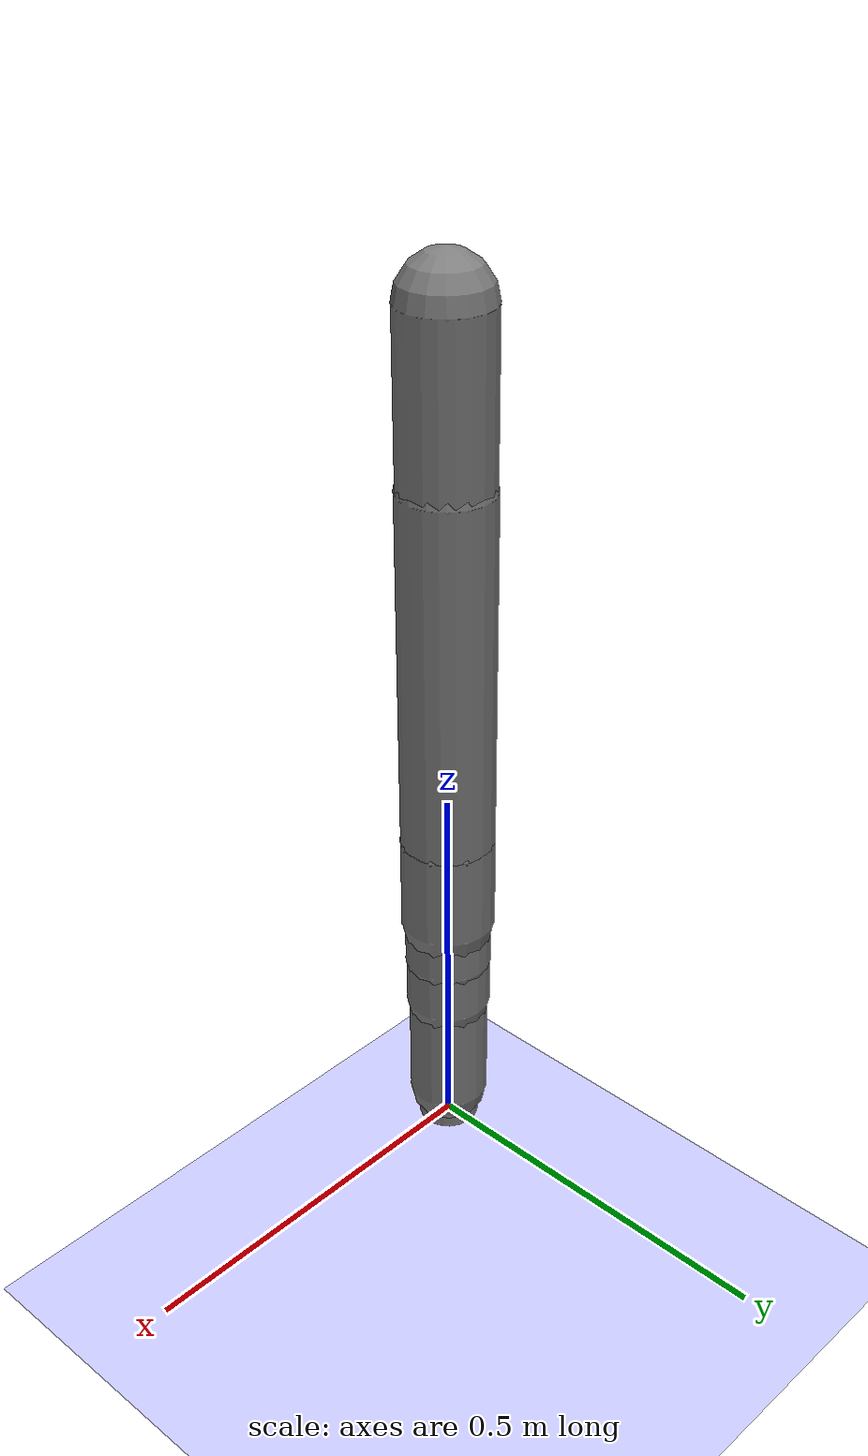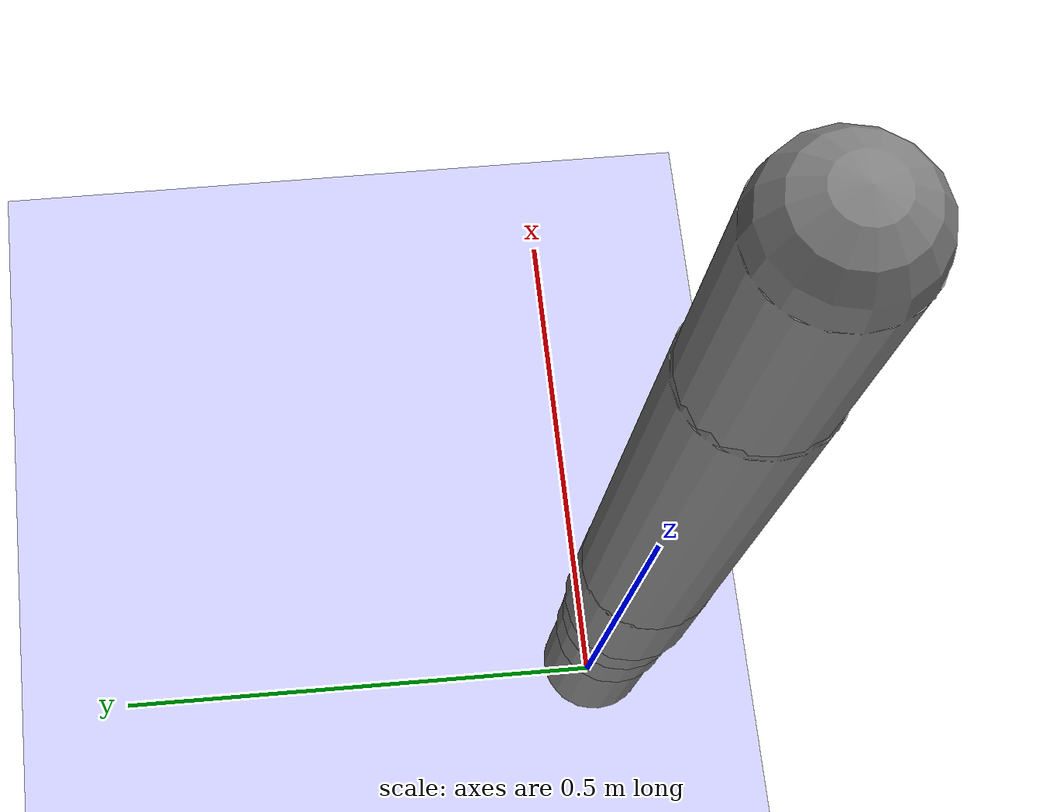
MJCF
<?xml version='1.0' encoding='UTF-8'?>
<mujoco model="robot_model">
  <worldbody>
    <light name="light" pos="0 -3 10" dir="0 0.5 -1" diffuse=".8 .8 .8" specular="0.1 0.1 0.1"/>
    <geom name="floor" type="plane" size="10.0 10.0 0.1" pos="0 0 0" rgba="0.8 0.8 1 1"/>
    <body name="limb0" pos="0 0 0">
      <geom type="capsule" fromto="0 0 0 0 0 0.25972782027974745" size="0.04" density="527.1059689065753"/>
      <site type="sphere" size="0.01" name="limb0_site0" pos="0 0 0.19633829563687952"/>
      <site type="sphere" size="0.01" name="limb0_site1" pos="0 0 0.04514801341765769"/>
      <freejoint name="limb0_root"/>
      <body name="limb1" pos="0 0 0.19633829563687952">
        <geom type="capsule" fromto="0 0 0 0 0 0.3827693687641604" size="0.05450373825606916" density="584.4061455168376"/>
        <site type="sphere" size="0.01" name="limb1_site0" pos="0 0 0.1275255353171341"/>
        <body name="limb2" pos="0 0 0.1275255353171341">
          <geom type="capsule" fromto="0 0 0 0 0 0.12406041482013717" size="0.06" density="986.2150518331317"/>
          <site type="sphere" size="0.01" name="limb2_site0" pos="0 0 0.10649884769039768"/>
          <body name="limb3" pos="0 0 0.10649884769039768">
            <geom type="capsule" fromto="0 0 0 0 0 0.3246346816300574" size="0.027985800535247497" density="877.8764988614424"/>
            <site type="sphere" size="0.01" name="limb3_site0" pos="0 0 0.30592291138675143"/>
            <body name="limb4" pos="0 0 0.30592291138675143">
              <geom type="capsule" fromto="0 0 0 0 0 0.38664313349290746" size="0.05825338637690475" density="1129.6842087872121"/>
              <joint name="joint_limb3_limb4_0" type="hinge" axis="0 0 1" range="-32.23675465955068 32.23675465955068" damping="5.0"/>
            </body>
            <joint name="joint_limb2_limb3_0" type="hinge" axis="1 0 0" range="-102.98912811609488 102.98912811609488" damping="5.0"/>
          </body>
          <joint name="joint_limb1_limb2_0" type="hinge" axis="1 0 0" range="-52.283974665468925 52.283974665468925" damping="5.0"/>
        </body>
        <joint name="joint_limb0_limb1_0" type="hinge" axis="0 1 0" range="-118.27639451941653 118.27639451941653" damping="5.0"/>
      </body>
      <body name="limb5" pos="0 0 0.04514801341765769">
        <geom type="capsule" fromto="0 0 0 0 0 0.22512675434995574" size="0.05169031872016689" density="728.5632008156655"/>
        <site type="sphere" size="0.01" name="limb5_site0" pos="0 0 0.04112360060909631"/>
        <site type="sphere" size="0.01" name="limb5_site1" pos="0 0 0.1653112235324185"/>
        <body name="limb6" pos="0 0 0.04112360060909631">
          <geom type="capsule" fromto="0 0 0 0 0 0.4837528144712693" size="0.03534724789617555" density="792.1216851149433"/>
          <site type="sphere" size="0.01" name="limb6_site0" pos="0 0 0.47748015792411674"/>
          <site type="sphere" size="0.01" name="limb6_site1" pos="0 0 0.1758660393671692"/>
          <body name="limb7" pos="0 0 0.47748015792411674">
            <geom type="capsule" fromto="0 0 0 0 0 0.19835280866970714" size="0.04411414027217507" density="507.15314310444455"/>
            <site type="sphere" size="0.01" name="limb7_site0" pos="0 0 0.1502248823307766"/>
            <body name="limb8" pos="0 0 0.1502248823307766">
              <geom type="capsule" fromto="0 0 0 0 0 0.19891389615533042" size="0.030325208070064356" density="1018.0930803065299"/>
              <joint name="joint_limb7_limb8_0" type="hinge" axis="0 0 1" range="-104.59573439320407 104.59573439320407" damping="5.0"/>
            </body>
            <joint name="joint_limb6_limb7_0" type="hinge" axis="0 1 0" range="-94.23813761224534 94.23813761224534" damping="5.0"/>
          </body>
          <body name="limb9" pos="0 0 0.1758660393671692">
            <geom type="capsule" fromto="0 0 0 0 0 0.17894284299821797" size="0.05566483344233837" density="599.4961849034263"/>
            <joint name="joint_limb6_limb9_0" type="hinge" axis="1 0 0" range="-75.18819932201001 75.18819932201001" damping="5.0"/>
          </body>
          <joint name="joint_limb5_limb6_0" type="hinge" axis="0 0 1" range="-98.208106043741 98.208106043741" damping="5.0"/>
        </body>
        <body name="limb10" pos="0 0 0.1653112235324185">
          <geom type="capsule" fromto="0 0 0 0 0 0.2879295497092825" size="0.04990344700900342" density="660.7067265019084"/>
          <site type="sphere" size="0.01" name="limb10_site0" pos="0 0 0.23449394497914045"/>
          <body name="limb11" pos="0 0 0.23449394497914045">
            <geom type="capsule" fromto="0 0 0 0 0 0.4676759956951593" size="0.05966738873335552" density="631.8729198528299"/>
            <joint name="joint_limb10_limb11_0" type="hinge" axis="1 0 0" range="-113.7215958826881 113.7215958826881" damping="5.0"/>
          </body>
          <joint name="joint_limb5_limb10_0" type="hinge" axis="1 0 0" range="-85.42010042852904 85.42010042852904" damping="5.0"/>
        </body>
        <joint name="joint_limb0_limb5_0" type="hinge" axis="0 0 1" range="-94.89045310930649 94.89045310930649" damping="5.0"/>
      </body>
    </body>
  </worldbody>
  <actuator>
    <position name="position_actuator_joint_limb0_limb1_0" joint="joint_limb0_limb1_0" gear="1.143090706227208" inheritrange="1" kp="10.0"/>
    <position name="position_actuator_joint_limb1_limb2_0" joint="joint_limb1_limb2_0" gear="1.7590088496875573" inheritrange="1" kp="10.0"/>
    <position name="position_actuator_joint_limb2_limb3_0" joint="joint_limb2_limb3_0" gear="1.285844846340357" inheritrange="1" kp="10.0"/>
    <position name="position_actuator_joint_limb3_limb4_0" joint="joint_limb3_limb4_0" gear="0.6866428973515241" inheritrange="1" kp="10.0"/>
    <position name="position_actuator_joint_limb0_limb5_0" joint="joint_limb0_limb5_0" gear="1.8606462444912897" inheritrange="1" kp="10.0"/>
    <position name="position_actuator_joint_limb5_limb6_0" joint="joint_limb5_limb6_0" gear="0.9075785035297382" inheritrange="1" kp="10.0"/>
    <position name="position_actuator_joint_limb6_limb7_0" joint="joint_limb6_limb7_0" gear="0.810755095099433" inheritrange="1" kp="10.0"/>
    <position name="position_actuator_joint_limb7_limb8_0" joint="joint_limb7_limb8_0" gear="0.7049780118299882" inheritrange="1" kp="10.0"/>
    <position name="position_actuator_joint_limb6_limb9_0" joint="joint_limb6_limb9_0" gear="0.7192497149736763" inheritrange="1" kp="10.0"/>
    <position name="position_actuator_joint_limb5_limb10_0" joint="joint_limb5_limb10_0" gear="0.7164254640385183" inheritrange="1" kp="10.0"/>
    <position name="position_actuator_joint_limb10_limb11_0" joint="joint_limb10_limb11_0" gear="1.29333500268873" inheritrange="1" kp="10.0"/>
  </actuator>
</mujoco>
